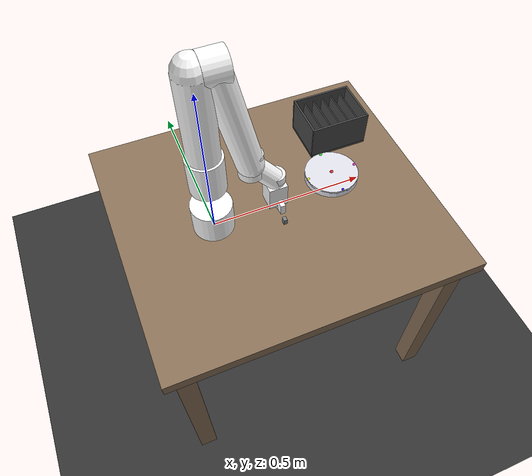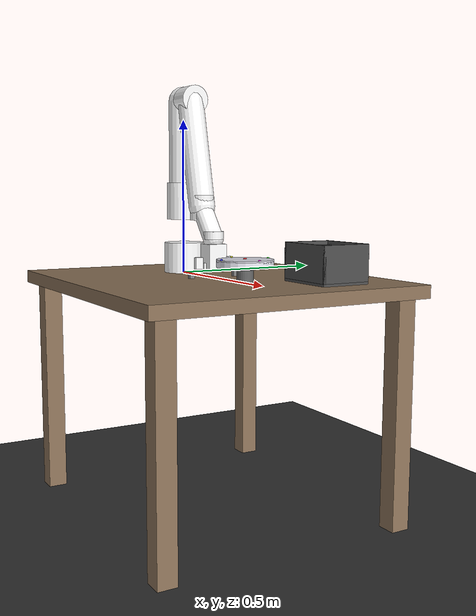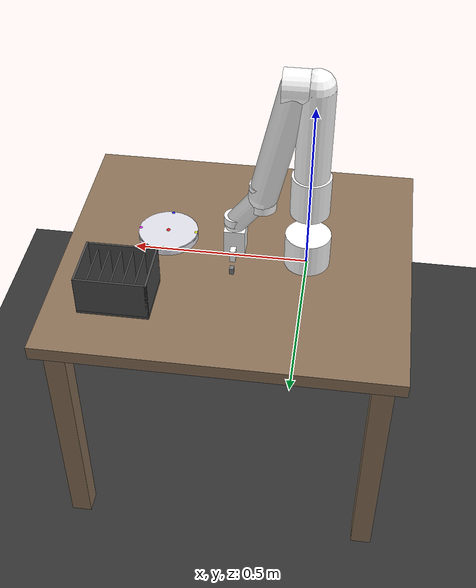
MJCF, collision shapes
<?xml version="1.0" encoding="utf-8"?>
<mujoco model="xarm7_plate_dishwasher_task">
  <compiler angle="radian" autolimits="true" meshdir=""/>

  <option timestep="0.002" gravity="0 0 -9.81" integrator="implicitfast" cone="elliptic">
    <flag contact="enable"/>
  </option>

  <visual>
    <headlight diffuse="0.6 0.6 0.6" ambient="0.3 0.3 0.3" specular="0 0 0"/>
    <rgba haze="0.15 0.25 0.35 1"/>
    <global azimuth="120" elevation="-20"/>
    <quality shadowsize="4096"/>
    <map force="0.1" zfar="30"/>
  </visual>

  <asset>
    <texture name="texplane" type="2d" builtin="checker" rgb1="0.15 0.15 0.15" rgb2="0.25 0.25 0.25" width="512" height="512"/>
    <material name="matplane" texture="texplane" texrepeat="6 6" reflectance="0.1"/>
    <texture name="wood" type="2d" builtin="flat" rgb1="0.55 0.45 0.35" rgb2="0.5 0.4 0.3" width="256" height="256"/>
    <material name="wood" texture="wood" reflectance="0.05"/>

    <material name="white" rgba="1 1 1 1"/>
    <material name="gray" rgba="0.753 0.753 0.753 1"/>
    <material name="dark_gray" rgba="0.4 0.4 0.4 1"/>
    <material name="black" rgba="0.2 0.2 0.2 1"/>

    <!-- ARM MESHES -->
    <mesh name="link_base" file="xarm_description/meshes/xarm7/visual/link_base.stl"/>
    <mesh name="link1" file="xarm_description/meshes/xarm7/visual/link1.stl"/>
    <mesh name="link2" file="xarm_description/meshes/xarm7/visual/link2.stl"/>
    <mesh name="link3" file="xarm_description/meshes/xarm7/visual/link3.stl"/>
    <mesh name="link4" file="xarm_description/meshes/xarm7/visual/link4.stl"/>
    <mesh name="link5" file="xarm_description/meshes/xarm7/visual/link5.stl"/>
    <mesh name="link6" file="xarm_description/meshes/xarm7/visual/link6.stl"/>
    <mesh name="link7" file="xarm_description/meshes/xarm7/visual/link7.stl"/>

    <!-- GRIPPER MESHES -->
    <mesh name="gripper_base" file="xarm_gripper/meshes/base_link.stl"/>
    <mesh name="left_finger" file="xarm_gripper/meshes/left_finger.stl"/>
    <mesh name="right_finger" file="xarm_gripper/meshes/right_finger.stl"/>
    <mesh name="left_outer_knuckle" file="xarm_gripper/meshes/left_outer_knuckle.stl"/>
    <mesh name="right_outer_knuckle" file="xarm_gripper/meshes/right_outer_knuckle.stl"/>
    <mesh name="left_inner_knuckle" file="xarm_gripper/meshes/left_inner_knuckle.stl"/>
    <mesh name="right_inner_knuckle" file="xarm_gripper/meshes/right_inner_knuckle.stl"/>
  </asset>

  <default>
    <default class="xarm7">
      <geom type="mesh" material="white"/>
      <joint axis="0 0 1" armature="0.1" damping="5"/>
    </default>
    <default class="gripper">
      <geom rgba="0.7 0.7 0.7 1" friction="1.0 0.05 0.01"/>
    </default>
    <default class="finger">
      <geom rgba="0.5 0.5 0.5 1" friction="1.2 0.05 0.01" solimp="0.95 0.99 0.001" solref="0.004 1"/>
    </default>
    <default class="plate">
      <geom rgba="0.92 0.92 0.96 1" friction="0.8 0.02 0.01"
            solimp="0.95 0.99 0.001" solref="0.002 1" margin="0.001"/>
    </default>
    <default class="rack">
      <geom rgba="0.3 0.3 0.3 1" friction="0.6 0.01 0.01"/>
    </default>
    <default class="table">
      <geom rgba="0.55 0.45 0.35 1"/>
    </default>
  </default>

  <worldbody>
    <!-- xArm7 ROBOT -->
    <include file="xarm7.xml"/>

    <geom name="floor" type="plane" size="2 2 0.1" pos="0 0 -0.75" material="matplane"/>
    <light pos="0.3 0 1.5" dir="0 0 -1" diffuse="0.8 0.8 0.8" specular="0.2 0.2 0.2"/>
    <light pos="-0.3 0.4 1.0" dir="0.2 -0.2 -0.9" diffuse="0.4 0.4 0.4"/>
    <light pos="0.5 -0.3 1.2" dir="-0.1 0.1 -0.9" diffuse="0.3 0.3 0.3"/>

    <!-- TABLE -->
    <body name="table" pos="0.2 0 0">
      <geom name="table_top" type="box" class="table" size="0.50 0.45 0.02" pos="0 0 -0.02" material="wood"/>
      <geom name="leg1" type="box" class="table" size="0.03 0.03 0.355" pos="-0.44 -0.39 -0.395"/>
      <geom name="leg2" type="box" class="table" size="0.03 0.03 0.355" pos="0.44 -0.39 -0.395"/>
      <geom name="leg3" type="box" class="table" size="0.03 0.03 0.355" pos="-0.44 0.39 -0.395"/>
      <geom name="leg4" type="box" class="table" size="0.03 0.03 0.355" pos="0.44 0.39 -0.395"/>
    </body>

    <!-- DISHWASHER RACK -->
    <body name="dishwasher_rack" pos="0.50 0.22 0.004">
      <geom name="rack_base" class="rack" type="box" size="0.10 0.08 0.004"/>
      <geom name="slot0" class="rack" type="box" size="0.002 0.065 0.05" pos="-0.065 0 0.054"/>
      <geom name="slot1" class="rack" type="box" size="0.002 0.065 0.05" pos="-0.0325 0 0.054"/>
      <geom name="slot2" class="rack" type="box" size="0.002 0.065 0.05" pos="0 0 0.054"/>
      <geom name="slot3" class="rack" type="box" size="0.002 0.065 0.05" pos="0.0325 0 0.054"/>
      <geom name="slot4" class="rack" type="box" size="0.002 0.065 0.05" pos="0.065 0 0.054"/>
      <geom name="wall_l" class="rack" type="box" size="0.003 0.08 0.055" pos="-0.097 0 0.059"/>
      <geom name="wall_r" class="rack" type="box" size="0.003 0.08 0.055" pos="0.097 0 0.059"/>
      <geom name="wall_f" class="rack" type="box" size="0.10 0.003 0.055" pos="0 -0.077 0.059"/>
      <geom name="wall_b" class="rack" type="box" size="0.10 0.003 0.055" pos="0 0.077 0.059"/>
      <site name="target_slot" pos="0.016 0 0.01" size="0.012 0.05 0.003" rgba="0 1 0 0.4" type="box"/>
    </body>

    <!-- PLATE STAND - Elevates plate so gripper can access rim         -->

    <!-- Pedestal stand - small so gripper can reach plate rim -->
    <body name="plate_stand" pos="0.40 0.0 0.0">
      <!-- Central pillar -->
      <geom name="stand_pillar" type="cylinder" size="0.025 0.02" pos="0 0 0.02" rgba="0.4 0.4 0.4 1"/>
      <!-- Flat top surface -->
      <geom name="stand_top" type="cylinder" size="0.03 0.003" pos="0 0 0.043" rgba="0.5 0.5 0.5 1"/>
    </body>

    <!--
      PLATE - Horizontal on stand
      - euler="0 0 0" means no rotation (flat)
      - Gripper approaches from above, fingers grab rim edge
    -->
    <body name="plate" pos="0.40 0.0 0.057" euler="0 0 0">
      <freejoint name="plate_joint"/>

      <!-- Main plate body -->
      <geom name="plate_base" class="plate" type="cylinder" size="0.085 0.010" mass="0.22"/>
      <!-- Raised rim -->
      <geom name="plate_rim" type="cylinder" size="0.085 0.004" pos="0 0 0.010" rgba="0.88 0.88 0.92 1" mass="0.04"/>

      <!-- Center site for tracking -->
      <site name="plate_center" pos="0 0 0.012" size="0.006" rgba="1 0 0 0.8"/>

      <!--
        Edge sites for grasp planning
        These are at the rim edge, 0.08m from center (slightly inside 0.085 radius)
        Z = 0.012 puts them at top surface of rim
      -->
      <site name="plate_top_edge" pos="0 0.08 0.012" size="0.005" rgba="0 1 0 0.8"/>
      <site name="plate_bottom_edge" pos="0 -0.08 0.012" size="0.005" rgba="0 0 1 0.8"/>
      <site name="plate_left_edge" pos="-0.08 0 0.012" size="0.005" rgba="1 1 0 0.8"/>
      <site name="plate_right_edge" pos="0.08 0 0.012" size="0.005" rgba="1 0 1 0.8"/>
    </body>

  </worldbody>

  <actuator>
    <position name="act_j1" joint="joint1" kp="2000" kv="100"/>
    <position name="act_j2" joint="joint2" kp="2000" kv="100"/>
    <position name="act_j3" joint="joint3" kp="1500" kv="80"/>
    <position name="act_j4" joint="joint4" kp="1500" kv="80"/>
    <position name="act_j5" joint="joint5" kp="1000" kv="50"/>
    <position name="act_j6" joint="joint6" kp="500" kv="30"/>
    <position name="act_j7" joint="joint7" kp="500" kv="30"/>
    <position name="act_gripper" joint="drive_joint" kp="200" kv="10"/>
  </actuator>

  <equality>
    <joint joint1="drive_joint" joint2="left_finger_joint" polycoef="0 1 0 0 0"/>
    <joint joint1="drive_joint" joint2="left_inner_knuckle_joint" polycoef="0 1 0 0 0"/>
    <joint joint1="drive_joint" joint2="right_outer_knuckle_joint" polycoef="0 1 0 0 0"/>
    <joint joint1="drive_joint" joint2="right_finger_joint" polycoef="0 1 0 0 0"/>
    <joint joint1="drive_joint" joint2="right_inner_knuckle_joint" polycoef="0 1 0 0 0"/>
  </equality>

  <sensor>
    <framepos name="plate_pos" objtype="site" objname="plate_center"/>
    <framequat name="plate_quat" objtype="site" objname="plate_center"/>
    <framepos name="target_pos" objtype="site" objname="target_slot"/>
    <framepos name="tcp_pos" objtype="site" objname="tcp_site"/>
    <framequat name="tcp_quat" objtype="site" objname="tcp_site"/>
    <framepos name="ee_pos" objtype="site" objname="ee_site"/>
    <framepos name="plate_top" objtype="site" objname="plate_top_edge"/>
  </sensor>

  <keyframe>
    <!--
      Home pose: arm ready, plate horizontal on stand
      Plate quat "1 0 0 0" = identity = no rotation
    -->
    <key name="home" qpos="0 0.35 0 1.4 0 1.05 0   0.85 0 0 0 0 0   0.40 0.0 0.057 1 0 0 0"/>
  </keyframe>
</mujoco>

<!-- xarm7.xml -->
<mujoco model="xarm7">
  <body name="link_base" pos="0 0 0" childclass="xarm7">
    <geom name="base_visual" type="mesh" mesh="link_base" material="white" contype="0" conaffinity="0"/>
    <geom name="base_collision" type="cylinder" size="0.065 0.05" pos="0 0 0.05" rgba="1 1 1 0" group="3"/>

    <body name="link1" pos="0 0 0.267">
      <inertial pos="-0.0002 0.02905 -0.01233" mass="2.382" diaginertia="0.0056905 0.0049566 0.003316654"/>
      <joint name="joint1" range="-6.28 6.28" damping="10"/>
      <geom name="link1_visual" type="mesh" mesh="link1" material="white" contype="0" conaffinity="0"/>
      <geom name="link1_collision" type="cylinder" size="0.055 0.06" pos="0 0 -0.03" rgba="1 1 1 0" group="3"/>

      <body name="link2" pos="0 0 0" euler="-1.5708 0 0">
        <inertial pos="0.00022 -0.12856 0.01735" mass="1.869" diaginertia="0.0095989 0.00382472 0.007565669"/>
        <joint name="joint2" range="-2.059 2.0944" damping="10"/>
        <geom name="link2_visual" type="mesh" mesh="link2" material="white" contype="0" conaffinity="0"/>
        <geom name="link2_collision" type="capsule" size="0.048" fromto="0 0 0 0 -0.293 0" rgba="1 1 1 0" group="3"/>

        <body name="link3" pos="0 -0.293 0" euler="1.5708 0 0">
          <inertial pos="0.0466 -0.02463 -0.00768" mass="1.6383" diaginertia="0.00310955 0.00264483 0.0026624"/>
          <joint name="joint3" range="-6.28 6.28" damping="5"/>
          <geom name="link3_visual" type="mesh" mesh="link3" material="white" contype="0" conaffinity="0"/>
          <geom name="link3_collision" type="cylinder" size="0.045 0.035" pos="0.0525 0 0" euler="0 1.5708 0" rgba="1 1 1 0" group="3"/>

          <body name="link4" pos="0.0525 0 0" euler="1.5708 0 0">
            <inertial pos="0.07047 -0.11575 0.012" mass="1.7269" diaginertia="0.005889 0.00359703 0.00543244"/>
            <joint name="joint4" range="-0.19198 3.927" damping="5"/>
            <geom name="link4_visual" type="mesh" mesh="link4" material="white" contype="0" conaffinity="0"/>
            <geom name="link4_collision" type="capsule" size="0.042" fromto="0 0 0 0.0775 -0.3425 0" rgba="1 1 1 0" group="3"/>

            <body name="link5" pos="0.0775 -0.3425 0" euler="1.5708 0 0">
              <inertial pos="-0.00032 0.01604 -0.026" mass="1.3203" diaginertia="0.00534665 0.0049779 0.0013624"/>
              <joint name="joint5" range="-6.28 6.28" damping="5"/>
              <geom name="link5_visual" type="mesh" mesh="link5" material="white" contype="0" conaffinity="0"/>
              <geom name="link5_collision" type="cylinder" size="0.038 0.04" rgba="1 1 1 0" group="3"/>

              <body name="link6" pos="0 0 0" euler="1.5708 0 0">
                <inertial pos="0.06469 0.03278 0.02141" mass="1.325" diaginertia="0.0014745 0.0019037 0.0023652"/>
                <joint name="joint6" range="-1.69297 3.14159" damping="2"/>
                <geom name="link6_visual" type="mesh" mesh="link6" material="gray" contype="0" conaffinity="0"/>
                <geom name="link6_collision" type="capsule" size="0.032" fromto="0 0 0 0.076 0.097 0" rgba="1 1 1 0" group="3"/>

                <body name="link7" pos="0.076 0.097 0" euler="-1.5708 0 0">
                  <inertial pos="0 -0.00677 -0.01098" mass="0.17" diaginertia="9.3e-05 5.87e-05 0.000132"/>
                  <joint name="joint7" range="-6.28 6.28" damping="2"/>
                  <geom name="link7_visual" type="mesh" mesh="link7" material="gray" contype="0" conaffinity="0"/>
                  <geom name="link7_collision" type="cylinder" size="0.032 0.012" pos="0 0 -0.012" rgba="1 1 1 0" group="3"/>
                  <site name="ee_site" pos="0 0 0" size="0.008" rgba="1 0 0 0.5"/>

                  <!-- GRIPPER - CORRECTED STRUCTURE              -->
                  <body name="xarm_gripper_base_link" pos="0 0 0">
                    <inertial pos="0 0 0.06" mass="0.5" diaginertia="0.001 0.001 0.001"/>
                    <geom name="gripper_base_visual" type="mesh" mesh="gripper_base" material="dark_gray" contype="0" conaffinity="0"/>
                    <geom name="gripper_base_collision" type="box" size="0.03 0.03 0.04" pos="0 0 0.055" rgba="1 1 1 0" group="3"/>

                    <!-- LEFT SIDE -->
                    <!-- The drive_joint is now ON the left_outer_knuckle body -->
                    <body name="left_outer_knuckle" pos="0 0.035 0.059">
                      <inertial pos="0 0.02 0.02" mass="0.03" diaginertia="0.00001 0.00001 0.00001"/>
                      <joint name="drive_joint" type="hinge" axis="1 0 0" range="0 0.85" damping="0.5"/>
                      <geom name="left_outer_knuckle_visual" type="mesh" mesh="left_outer_knuckle" class="gripper" contype="0" conaffinity="0"/>
                      <geom name="left_outer_knuckle_collision" type="box" size="0.008 0.012 0.018" pos="0 0.018 0.015" rgba="1 1 1 0" group="3"/>

                      <body name="left_finger" pos="0 0.035465 0.042039">
                        <inertial pos="0 0.01 0.03" mass="0.02" diaginertia="0.00001 0.00001 0.00001"/>
                        <joint name="left_finger_joint" type="hinge" axis="-1 0 0" range="-0.85 0.85" damping="0.2"/>
                        <geom name="left_finger_visual" type="mesh" mesh="left_finger" class="finger" contype="0" conaffinity="0"/>
                        <geom name="left_finger_collision1" type="box" size="0.006 0.008 0.025" pos="0 0.008 0.025" class="finger"/>
                        <geom name="left_finger_collision2" type="box" size="0.006 0.012 0.008" pos="0 0.012 0.058" class="finger"/>
                        <site name="left_finger_tip" pos="0 0.012 0.065" size="0.004" rgba="1 0 0 0.5"/>
                      </body>
                    </body>

                    <body name="left_inner_knuckle" pos="0 0.02 0.074">
                      <inertial pos="0 0.01 0.015" mass="0.02" diaginertia="0.00001 0.00001 0.00001"/>
                      <joint name="left_inner_knuckle_joint" type="hinge" axis="1 0 0" range="-0.85 0.85" damping="0.2"/>
                      <geom name="left_inner_knuckle_visual" type="mesh" mesh="left_inner_knuckle" class="gripper" contype="0" conaffinity="0"/>
                      <geom name="left_inner_knuckle_collision" type="box" size="0.006 0.006 0.015" pos="0 0.01 0.015" rgba="1 1 1 0" group="3"/>
                    </body>

                    <!-- RIGHT SIDE - mirrors left side -->
                    <body name="right_outer_knuckle" pos="0 -0.035 0.059">
                      <inertial pos="0 -0.02 0.02" mass="0.03" diaginertia="0.00001 0.00001 0.00001"/>
                      <joint name="right_outer_knuckle_joint" type="hinge" axis="1 0 0" range="-0.85 0" damping="0.5"/>
                      <geom name="right_outer_knuckle_visual" type="mesh" mesh="right_outer_knuckle" class="gripper" contype="0" conaffinity="0"/>
                      <geom name="right_outer_knuckle_collision" type="box" size="0.008 0.012 0.018" pos="0 -0.018 0.015" rgba="1 1 1 0" group="3"/>

                      <body name="right_finger" pos="0 -0.035465 0.042039">
                        <inertial pos="0 -0.01 0.03" mass="0.02" diaginertia="0.00001 0.00001 0.00001"/>
                        <joint name="right_finger_joint" type="hinge" axis="1 0 0" range="-0.85 0.85" damping="0.2"/>
                        <geom name="right_finger_visual" type="mesh" mesh="right_finger" class="finger" contype="0" conaffinity="0"/>
                        <geom name="right_finger_collision1" type="box" size="0.006 0.008 0.025" pos="0 -0.008 0.025" class="finger"/>
                        <geom name="right_finger_collision2" type="box" size="0.006 0.012 0.008" pos="0 -0.012 0.058" class="finger"/>
                        <site name="right_finger_tip" pos="0 -0.012 0.065" size="0.004" rgba="0 0 1 0.5"/>
                      </body>
                    </body>

                    <body name="right_inner_knuckle" pos="0 -0.02 0.074">
                      <inertial pos="0 -0.01 0.015" mass="0.02" diaginertia="0.00001 0.00001 0.00001"/>
                      <joint name="right_inner_knuckle_joint" type="hinge" axis="-1 0 0" range="-0.85 0.85" damping="0.2"/>
                      <geom name="right_inner_knuckle_visual" type="mesh" mesh="right_inner_knuckle" class="gripper" contype="0" conaffinity="0"/>
                      <geom name="right_inner_knuckle_collision" type="box" size="0.006 0.006 0.015" pos="0 -0.01 0.015" rgba="1 1 1 0" group="3"/>
                    </body>

                    <!-- TCP -->
                    <body name="link_tcp" pos="0 0 0.172">
                      <site name="tcp_site" pos="0 0 0" size="0.006" rgba="0 1 0 1"/>
                    </body>
                  </body>
                </body>
              </body>
            </body>
          </body>
        </body>
      </body>
    </body>
  </body>
</mujoco>
